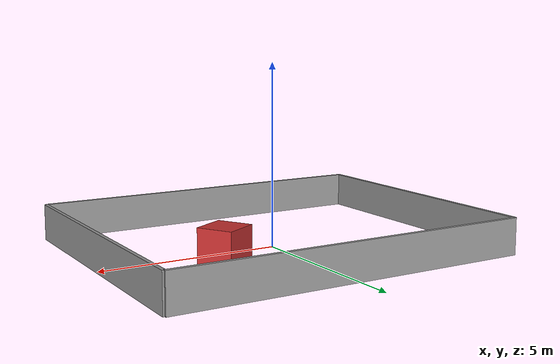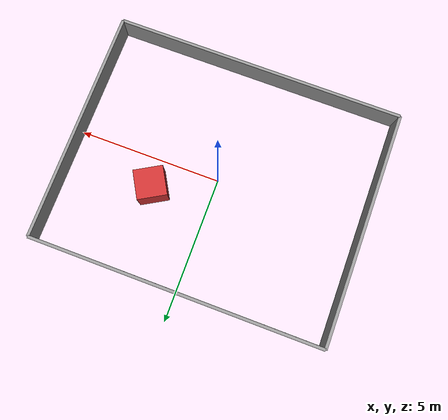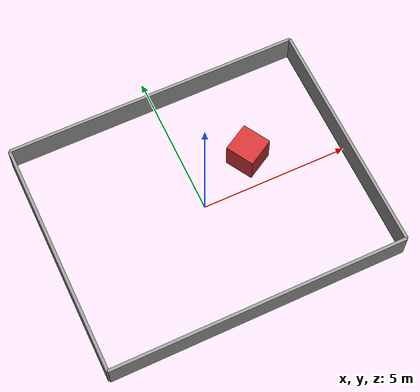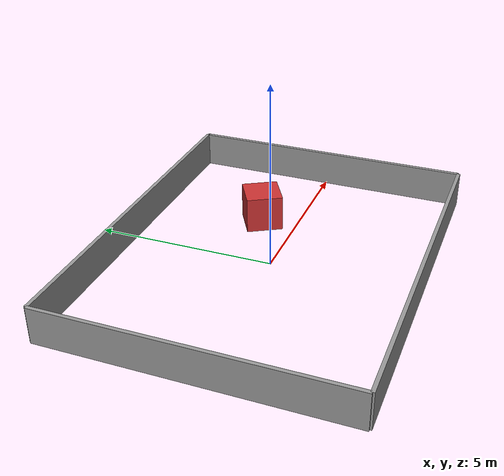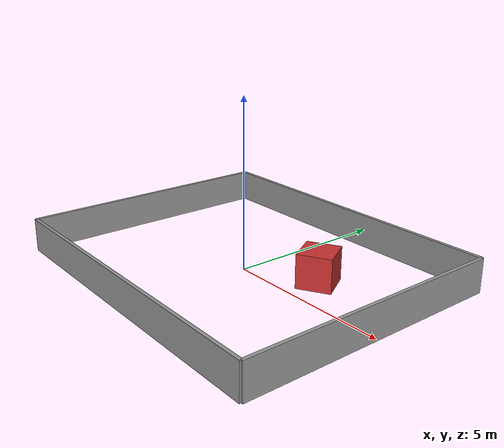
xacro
<?xml version="1.0"?>
<robot xmlns:xacro="http://www.ros.org/wiki/xacro" name="raycast_demo_walls">

  <!-- Namespace prefix so multiple robots can each own a distinct world tree. -->
  <xacro:arg name="tf_prefix" default="robot"/>
  <xacro:property name="tf_prefix" value="$(arg tf_prefix)"/>

  <xacro:property name="room_x" value="10.0"/>
  <xacro:property name="room_y" value="8.0"/>
  <xacro:property name="wall_h" value="1.0"/>
  <xacro:property name="wall_t" value="0.1"/>

  <material name="wall_grey"><color rgba="0.6 0.6 0.6 1.0"/></material>
  <material name="obstacle_red"><color rgba="0.8 0.2 0.2 1.0"/></material>

  <link name="${tf_prefix}/world"/>

  <!-- Macro: one box wall link + fixed joint to world. -->
  <xacro:macro name="wall" params="name x y z sx sy sz *material">
    <link name="${tf_prefix}/${name}">
      <visual>
        <geometry><box size="${sx} ${sy} ${sz}"/></geometry>
        <xacro:insert_block name="material"/>
      </visual>
      <collision>
        <geometry><box size="${sx} ${sy} ${sz}"/></geometry>
      </collision>
    </link>
    <joint name="${tf_prefix}/${name}_joint" type="fixed">
      <parent link="${tf_prefix}/world"/>
      <child link="${tf_prefix}/${name}"/>
      <origin xyz="${x} ${y} ${z}" rpy="0 0 0"/>
    </joint>
  </xacro:macro>

  <!-- Four perimeter walls (centred on the room origin). -->
  <xacro:wall name="wall_north" x="0" y="${room_y/2}" z="${wall_h/2}"
              sx="${room_x}" sy="${wall_t}" sz="${wall_h}">
    <material name="wall_grey"/>
  </xacro:wall>
  <xacro:wall name="wall_south" x="0" y="${-room_y/2}" z="${wall_h/2}"
              sx="${room_x}" sy="${wall_t}" sz="${wall_h}">
    <material name="wall_grey"/>
  </xacro:wall>
  <xacro:wall name="wall_east" x="${room_x/2}" y="0" z="${wall_h/2}"
              sx="${wall_t}" sy="${room_y}" sz="${wall_h}">
    <material name="wall_grey"/>
  </xacro:wall>
  <xacro:wall name="wall_west" x="${-room_x/2}" y="0" z="${wall_h/2}"
              sx="${wall_t}" sy="${room_y}" sz="${wall_h}">
    <material name="wall_grey"/>
  </xacro:wall>

  <!-- One interior obstacle, rotated 30 deg about z to exercise oriented boxes. -->
  <link name="${tf_prefix}/obstacle_1">
    <visual>
      <geometry><box size="1.0 1.0 1.0"/></geometry>
      <material name="obstacle_red"/>
    </visual>
    <collision>
      <geometry><box size="1.0 1.0 1.0"/></geometry>
    </collision>
  </link>
  <joint name="${tf_prefix}/obstacle_1_joint" type="fixed">
    <parent link="${tf_prefix}/world"/>
    <child link="${tf_prefix}/obstacle_1"/>
    <origin xyz="2.0 1.0 0.5" rpy="0 0 0.5236"/>
  </joint>

</robot>
